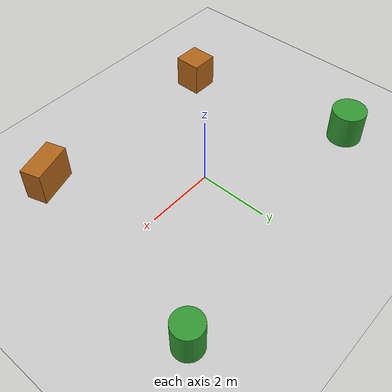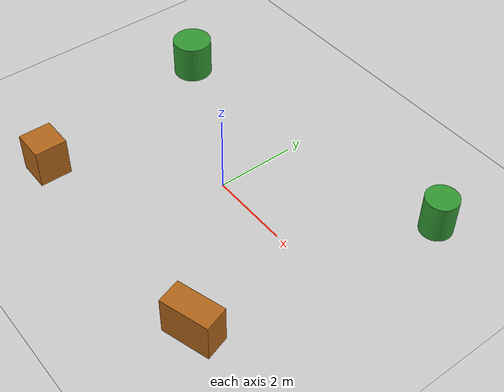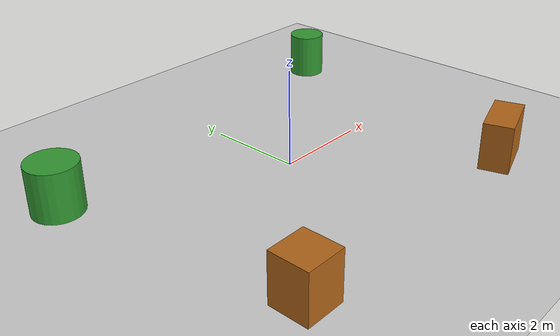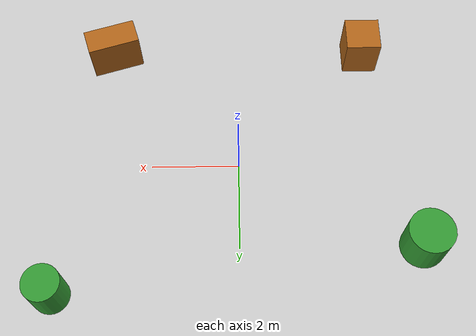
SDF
<?xml version="1.0" ?>
<sdf version="1.10">
  <world name="obstacles_multi">

    <physics name="1ms" type="ignored">
      <max_step_size>0.001</max_step_size>
      <real_time_factor>1.0</real_time_factor>
    </physics>

    <plugin filename="gz-sim-physics-system"
            name="gz::sim::systems::Physics"/>
    <plugin filename="gz-sim-user-commands-system"
            name="gz::sim::systems::UserCommands"/>
    <plugin filename="gz-sim-scene-broadcaster-system"
            name="gz::sim::systems::SceneBroadcaster"/>
    <plugin filename="gz-sim-sensors-system"
            name="gz::sim::systems::Sensors">
      <render_engine>ogre2</render_engine>
    </plugin>

    <light type="directional" name="sun">
      <cast_shadows>true</cast_shadows>
      <pose>0 0 10 0 0 0</pose>
      <diffuse>0.8 0.8 0.8 1</diffuse>
      <specular>0.2 0.2 0.2 1</specular>
      <direction>-0.5 0.1 -0.9</direction>
    </light>

    <model name="ground_plane">
      <static>true</static>
      <link name="link">
        <collision name="collision">
          <geometry><plane><normal>0 0 1</normal><size>100 100</size></plane></geometry>
        </collision>
        <visual name="visual">
          <geometry><plane><normal>0 0 1</normal><size>100 100</size></plane></geometry>
          <material><ambient>0.8 0.8 0.8 1</ambient><diffuse>0.8 0.8 0.8 1</diffuse></material>
        </visual>
      </link>
    </model>

    <!-- Obstáculos FORA da lemniscata (a=2.0, curva vai de -2 a +2 em x) -->
    <!-- Colocados a pelo menos 3m do centro para não bloquear a curva -->

    <model name="cyl_1">
      <static>true</static><pose>4 3 0.5 0 0 0</pose>
      <link name="link">
        <collision name="c"><geometry><cylinder><radius>0.4</radius><length>1</length></cylinder></geometry></collision>
        <visual name="v"><geometry><cylinder><radius>0.4</radius><length>1</length></cylinder></geometry>
          <material><ambient>0.2 0.6 0.2 1</ambient><diffuse>0.2 0.6 0.2 1</diffuse></material></visual>
      </link>
    </model>

    <model name="cyl_2">
      <static>true</static><pose>-4 2 0.5 0 0 0</pose>
      <link name="link">
        <collision name="c"><geometry><cylinder><radius>0.5</radius><length>1</length></cylinder></geometry></collision>
        <visual name="v"><geometry><cylinder><radius>0.5</radius><length>1</length></cylinder></geometry>
          <material><ambient>0.2 0.6 0.2 1</ambient><diffuse>0.2 0.6 0.2 1</diffuse></material></visual>
      </link>
    </model>

    <model name="box_1">
      <static>true</static><pose>3 -3 0.5 0 0 0.3</pose>
      <link name="link">
        <collision name="c"><geometry><box><size>1.2 0.6 1</size></box></geometry></collision>
        <visual name="v"><geometry><box><size>1.2 0.6 1</size></box></geometry>
          <material><ambient>0.7 0.4 0.1 1</ambient><diffuse>0.7 0.4 0.1 1</diffuse></material></visual>
      </link>
    </model>

    <model name="box_2">
      <static>true</static><pose>-3 -3 0.5 0 0 0</pose>
      <link name="link">
        <collision name="c"><geometry><box><size>0.8 0.8 1</size></box></geometry></collision>
        <visual name="v"><geometry><box><size>0.8 0.8 1</size></box></geometry>
          <material><ambient>0.7 0.4 0.1 1</ambient><diffuse>0.7 0.4 0.1 1</diffuse></material></visual>
      </link>
    </model>

  </world>
</sdf>
